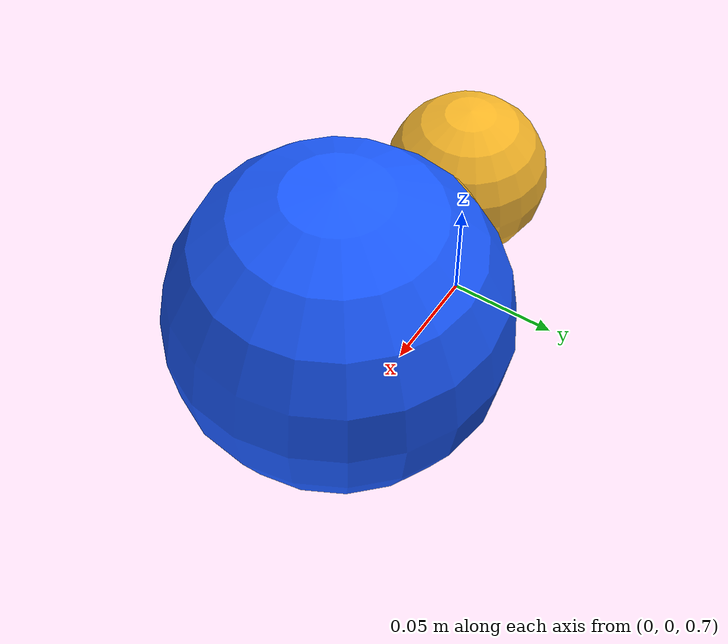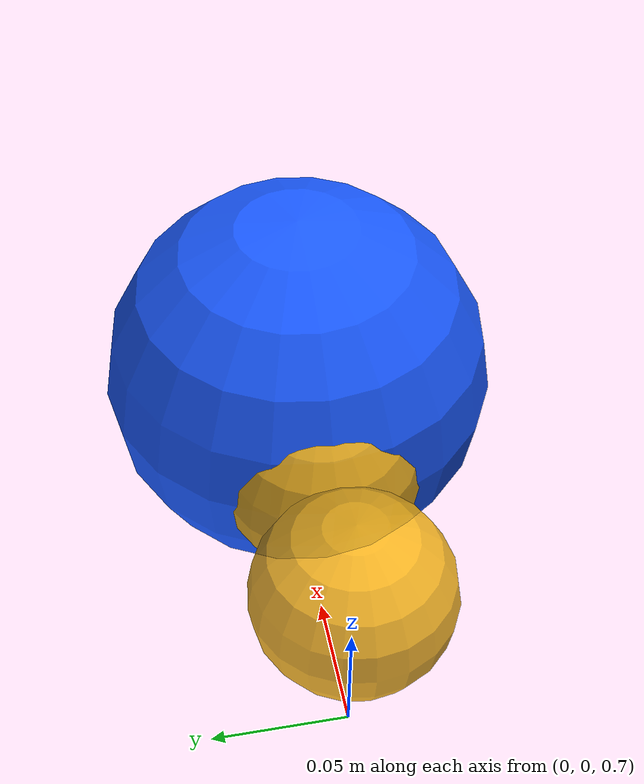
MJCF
<mujoco model="kimodo trajectory markers">
  <worldbody>
    <geom name="kimodo_path_0000" type="sphere" size="0.035" pos="0.000000 0.000000 0.775266" rgba="1 0.72 0.05 0.85"/>
    <geom name="kimodo_path_0001" type="sphere" size="0.035" pos="0.052030 0.000695 0.776434" rgba="1 0.72 0.05 0.85"/>
    <geom name="kimodo_path_0002" type="sphere" size="0.035" pos="0.073217 0.000356 0.777135" rgba="1 0.72 0.05 0.85"/>
    <geom name="kimodo_path_0003" type="sphere" size="0.035" pos="0.076346 0.002143 0.776493" rgba="1 0.72 0.05 0.85"/>
    <geom name="kimodo_path_0004" type="sphere" size="0.035" pos="0.100000 0.000000 0.776009" rgba="1 0.72 0.05 0.85"/>
    <geom name="kimodo_path_0005" type="sphere" size="0.035" pos="0.100000 0.000000 0.776733" rgba="1 0.72 0.05 0.85"/>
    <geom name="kimodo_path_0006" type="sphere" size="0.035" pos="0.100000 0.000000 0.780000" rgba="1 0.72 0.05 0.85"/>
    <geom name="kimodo_path_0007" type="sphere" size="0.035" pos="0.100000 0.000000 0.780000" rgba="1 0.72 0.05 0.85"/>
    <geom name="kimodo_path_0008" type="sphere" size="0.035" pos="0.100000 0.000000 0.780000" rgba="1 0.72 0.05 0.85"/>
    <geom name="kimodo_path_0009" type="sphere" size="0.035" pos="0.100000 0.000000 0.780000" rgba="1 0.72 0.05 0.85"/>
    <geom name="kimodo_path_0010" type="sphere" size="0.035" pos="0.100000 0.000000 0.780000" rgba="1 0.72 0.05 0.85"/>
    <geom name="kimodo_path_0011" type="sphere" size="0.035" pos="0.100000 0.000000 0.780000" rgba="1 0.72 0.05 0.85"/>
    <geom name="kimodo_target" type="sphere" size="0.07" pos="0.100000 0.000000 0.780000" rgba="0.1 0.35 1 1"/>
  </worldbody>
</mujoco>
